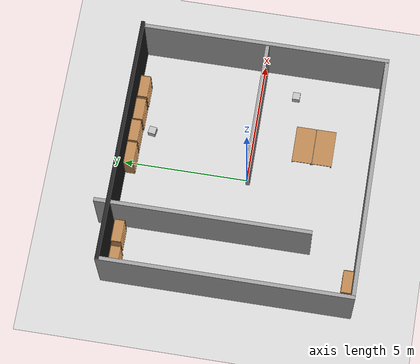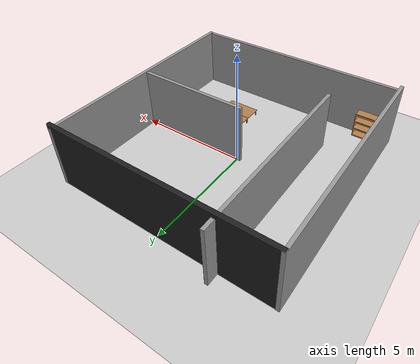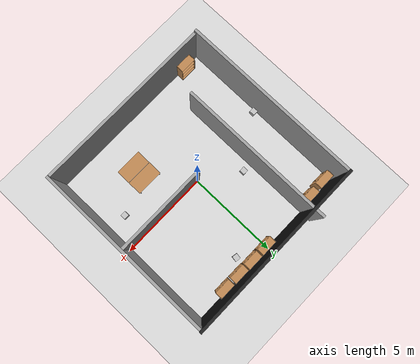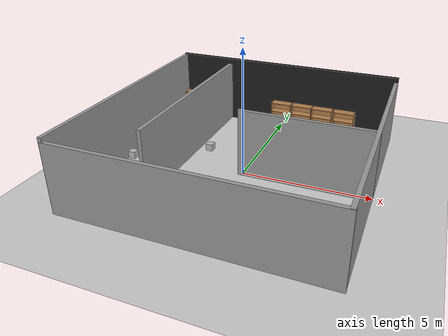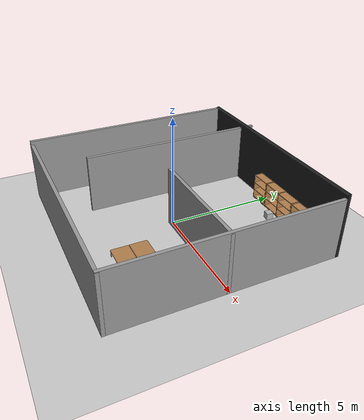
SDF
<sdf version="1.7">
 <world name="default">
  <light name="sun" type="directional">
   <pose>0 0 10 0 -0 0</pose>
   <diffuse>0.8 0.8 0.8 1</diffuse>
   <specular>0.2 0.2 0.2 1</specular>
   <attenuation>
    <range>1000</range>
    <constant>0.9</constant>
    <linear>0.01</linear>
    <quadratic>0.001</quadratic>
   </attenuation>
   <direction>-0.5 0.1 -0.9</direction>
   <spot><inner_angle>0</inner_angle><outer_angle>0</outer_angle><falloff>0</falloff></spot>
  </light>
  <model name="ground_plane">
   <static>1</static>
   <link name="link">
    <collision name="collision">
     <geometry><plane><normal>0 0 1</normal><size>100 100</size></plane></geometry>
     <surface><friction><ode><mu>100</mu><mu2>50</mu2></ode></friction></surface>
    </collision>
    <visual name="visual">
     <cast_shadows>0</cast_shadows>
     <geometry><plane><normal>0 0 1</normal><size>100 100</size></plane></geometry>
     <material>
      <script><uri>file://media/materials/scripts/gazebo.material</uri><name>Gazebo/Grey</name></script>
     </material>
    </visual>
   </link>
  </model>
  <gravity>0 0 -9.8</gravity>
  <magnetic_field>6e-06 2.3e-05 -4.2e-05</magnetic_field>
  <atmosphere type="adiabatic"/>
  <physics type="ode">
   <max_step_size>0.001</max_step_size>
   <real_time_factor>1</real_time_factor>
   <real_time_update_rate>1000</real_time_update_rate>
  </physics>
  <scene><ambient>0.4 0.4 0.4 1</ambient><background>0.7 0.7 0.7 1</background><shadows>1</shadows></scene>
  <spherical_coordinates>
   <surface_model>EARTH_WGS84</surface_model>
   <latitude_deg>0</latitude_deg>
   <longitude_deg>0</longitude_deg>
   <elevation>0</elevation>
   <heading_deg>0</heading_deg>
  </spherical_coordinates>
  <model name="bookshelf">
   <static>1</static>
   <link name="link">
    <inertial><mass>1</mass></inertial>
    <collision name="back">
     <pose>0 0.005 0.6 0 -0 0</pose>
     <geometry><box><size>0.9 0.01 1.2</size></box></geometry>
    </collision>
    <visual name="visual1">
     <pose>0 0.005 0.6 0 -0 0</pose>
     <geometry><box><size>0.9 0.01 1.2</size></box></geometry>
     <material>
      <script><uri>file://media/materials/scripts/gazebo.material</uri><name>Gazebo/Wood</name></script>
     </material>
    </visual>
    <collision name="left_side">
     <pose>0.45 -0.195 0.6 0 -0 0</pose>
     <geometry><box><size>0.02 0.4 1.2</size></box></geometry>
    </collision>
    <visual name="visual2">
     <pose>0.45 -0.195 0.6 0 -0 0</pose>
     <geometry><box><size>0.02 0.4 1.2</size></box></geometry>
     <material>
      <script><uri>file://media/materials/scripts/gazebo.material</uri><name>Gazebo/Wood</name></script>
     </material>
    </visual>
    <collision name="right_side">
     <pose>-0.45 -0.195 0.6 0 -0 0</pose>
     <geometry><box><size>0.02 0.4 1.2</size></box></geometry>
    </collision>
    <visual name="visual3">
     <pose>-0.45 -0.195 0.6 0 -0 0</pose>
     <geometry><box><size>0.02 0.4 1.2</size></box></geometry>
     <material>
      <script><uri>file://media/materials/scripts/gazebo.material</uri><name>Gazebo/Wood</name></script>
     </material>
    </visual>
    <collision name="bottom">
     <pose>0 -0.195 0.03 0 -0 0</pose>
     <geometry><box><size>0.88 0.4 0.06</size></box></geometry>
    </collision>
    <visual name="visual4">
     <pose>0 -0.195 0.03 0 -0 0</pose>
     <geometry><box><size>0.88 0.4 0.06</size></box></geometry>
     <material>
      <script><uri>file://media/materials/scripts/gazebo.material</uri><name>Gazebo/Wood</name></script>
     </material>
    </visual>
    <collision name="top">
     <pose>0 -0.195 1.19 0 -0 0</pose>
     <geometry><box><size>0.88 0.4 0.02</size></box></geometry>
    </collision>
    <visual name="visual5">
     <pose>0 -0.195 1.19 0 -0 0</pose>
     <geometry><box><size>0.88 0.4 0.02</size></box></geometry>
     <material>
      <script><uri>file://media/materials/scripts/gazebo.material</uri><name>Gazebo/Wood</name></script>
     </material>
    </visual>
    <collision name="low_shelf">
     <pose>0 -0.195 0.43 0 -0 0</pose>
     <geometry><box><size>0.88 0.4 0.02</size></box></geometry>
    </collision>
    <visual name="visual6">
     <pose>0 -0.195 0.43 0 -0 0</pose>
     <geometry><box><size>0.88 0.4 0.02</size></box></geometry>
     <material>
      <script><uri>file://media/materials/scripts/gazebo.material</uri><name>Gazebo/Wood</name></script>
     </material>
    </visual>
    <collision name="high_shelf">
     <pose>0 -0.195 0.8 0 -0 0</pose>
     <geometry><box><size>0.88 0.4 0.02</size></box></geometry>
    </collision>
    <visual name="visual7">
     <pose>0 -0.195 0.8 0 -0 0</pose>
     <geometry><box><size>0.88 0.4 0.02</size></box></geometry>
     <material>
      <script><uri>file://media/materials/scripts/gazebo.material</uri><name>Gazebo/Wood</name></script>
     </material>
    </visual>
   </link>
   <pose>0.052357 4.90916 0 0 -0 0</pose>
  </model>
  <model name="bookshelf_clone">
   <static>1</static>
   <link name="link">
    <inertial><mass>1</mass></inertial>
    <collision name="back">
     <pose>0 0.005 0.6 0 -0 0</pose>
     <geometry><box><size>0.9 0.01 1.2</size></box></geometry>
    </collision>
    <visual name="visual1">
     <pose>0 0.005 0.6 0 -0 0</pose>
     <geometry><box><size>0.9 0.01 1.2</size></box></geometry>
     <material>
      <script><uri>file://media/materials/scripts/gazebo.material</uri><name>Gazebo/Wood</name></script>
     </material>
    </visual>
    <collision name="left_side">
     <pose>0.45 -0.195 0.6 0 -0 0</pose>
     <geometry><box><size>0.02 0.4 1.2</size></box></geometry>
    </collision>
    <visual name="visual2">
     <pose>0.45 -0.195 0.6 0 -0 0</pose>
     <geometry><box><size>0.02 0.4 1.2</size></box></geometry>
     <material>
      <script><uri>file://media/materials/scripts/gazebo.material</uri><name>Gazebo/Wood</name></script>
     </material>
    </visual>
    <collision name="right_side">
     <pose>-0.45 -0.195 0.6 0 -0 0</pose>
     <geometry><box><size>0.02 0.4 1.2</size></box></geometry>
    </collision>
    <visual name="visual3">
     <pose>-0.45 -0.195 0.6 0 -0 0</pose>
     <geometry><box><size>0.02 0.4 1.2</size></box></geometry>
     <material>
      <script><uri>file://media/materials/scripts/gazebo.material</uri><name>Gazebo/Wood</name></script>
     </material>
    </visual>
    <collision name="bottom">
     <pose>0 -0.195 0.03 0 -0 0</pose>
     <geometry><box><size>0.88 0.4 0.06</size></box></geometry>
    </collision>
    <visual name="visual4">
     <pose>0 -0.195 0.03 0 -0 0</pose>
     <geometry><box><size>0.88 0.4 0.06</size></box></geometry>
     <material>
      <script><uri>file://media/materials/scripts/gazebo.material</uri><name>Gazebo/Wood</name></script>
     </material>
    </visual>
    <collision name="top">
     <pose>0 -0.195 1.19 0 -0 0</pose>
     <geometry><box><size>0.88 0.4 0.02</size></box></geometry>
    </collision>
    <visual name="visual5">
     <pose>0 -0.195 1.19 0 -0 0</pose>
     <geometry><box><size>0.88 0.4 0.02</size></box></geometry>
     <material>
      <script><uri>file://media/materials/scripts/gazebo.material</uri><name>Gazebo/Wood</name></script>
     </material>
    </visual>
    <collision name="low_shelf">
     <pose>0 -0.195 0.43 0 -0 0</pose>
     <geometry><box><size>0.88 0.4 0.02</size></box></geometry>
    </collision>
    <visual name="visual6">
     <pose>0 -0.195 0.43 0 -0 0</pose>
     <geometry><box><size>0.88 0.4 0.02</size></box></geometry>
     <material>
      <script><uri>file://media/materials/scripts/gazebo.material</uri><name>Gazebo/Wood</name></script>
     </material>
    </visual>
    <collision name="high_shelf">
     <pose>0 -0.195 0.8 0 -0 0</pose>
     <geometry><box><size>0.88 0.4 0.02</size></box></geometry>
    </collision>
    <visual name="visual7">
     <pose>0 -0.195 0.8 0 -0 0</pose>
     <geometry><box><size>0.88 0.4 0.02</size></box></geometry>
     <material>
      <script><uri>file://media/materials/scripts/gazebo.material</uri><name>Gazebo/Wood</name></script>
     </material>
    </visual>
   </link>
   <pose>1.01366 4.91194 0 0 -0 0</pose>
  </model>
  <model name="bookshelf_clone_0">
   <static>1</static>
   <link name="link">
    <inertial><mass>1</mass></inertial>
    <collision name="back">
     <pose>0 0.005 0.6 0 -0 0</pose>
     <geometry><box><size>0.9 0.01 1.2</size></box></geometry>
    </collision>
    <visual name="visual1">
     <pose>0 0.005 0.6 0 -0 0</pose>
     <geometry><box><size>0.9 0.01 1.2</size></box></geometry>
     <material>
      <script><uri>file://media/materials/scripts/gazebo.material</uri><name>Gazebo/Wood</name></script>
     </material>
    </visual>
    <collision name="left_side">
     <pose>0.45 -0.195 0.6 0 -0 0</pose>
     <geometry><box><size>0.02 0.4 1.2</size></box></geometry>
    </collision>
    <visual name="visual2">
     <pose>0.45 -0.195 0.6 0 -0 0</pose>
     <geometry><box><size>0.02 0.4 1.2</size></box></geometry>
     <material>
      <script><uri>file://media/materials/scripts/gazebo.material</uri><name>Gazebo/Wood</name></script>
     </material>
    </visual>
    <collision name="right_side">
     <pose>-0.45 -0.195 0.6 0 -0 0</pose>
     <geometry><box><size>0.02 0.4 1.2</size></box></geometry>
    </collision>
    <visual name="visual3">
     <pose>-0.45 -0.195 0.6 0 -0 0</pose>
     <geometry><box><size>0.02 0.4 1.2</size></box></geometry>
     <material>
      <script><uri>file://media/materials/scripts/gazebo.material</uri><name>Gazebo/Wood</name></script>
     </material>
    </visual>
    <collision name="bottom">
     <pose>0 -0.195 0.03 0 -0 0</pose>
     <geometry><box><size>0.88 0.4 0.06</size></box></geometry>
    </collision>
    <visual name="visual4">
     <pose>0 -0.195 0.03 0 -0 0</pose>
     <geometry><box><size>0.88 0.4 0.06</size></box></geometry>
     <material>
      <script><uri>file://media/materials/scripts/gazebo.material</uri><name>Gazebo/Wood</name></script>
     </material>
    </visual>
    <collision name="top">
     <pose>0 -0.195 1.19 0 -0 0</pose>
     <geometry><box><size>0.88 0.4 0.02</size></box></geometry>
    </collision>
    <visual name="visual5">
     <pose>0 -0.195 1.19 0 -0 0</pose>
     <geometry><box><size>0.88 0.4 0.02</size></box></geometry>
     <material>
      <script><uri>file://media/materials/scripts/gazebo.material</uri><name>Gazebo/Wood</name></script>
     </material>
    </visual>
    <collision name="low_shelf">
     <pose>0 -0.195 0.43 0 -0 0</pose>
     <geometry><box><size>0.88 0.4 0.02</size></box></geometry>
    </collision>
    <visual name="visual6">
     <pose>0 -0.195 0.43 0 -0 0</pose>
     <geometry><box><size>0.88 0.4 0.02</size></box></geometry>
     <material>
      <script><uri>file://media/materials/scripts/gazebo.material</uri><name>Gazebo/Wood</name></script>
     </material>
    </visual>
    <collision name="high_shelf">
     <pose>0 -0.195 0.8 0 -0 0</pose>
     <geometry><box><size>0.88 0.4 0.02</size></box></geometry>
    </collision>
    <visual name="visual7">
     <pose>0 -0.195 0.8 0 -0 0</pose>
     <geometry><box><size>0.88 0.4 0.02</size></box></geometry>
     <material>
      <script><uri>file://media/materials/scripts/gazebo.material</uri><name>Gazebo/Wood</name></script>
     </material>
    </visual>
   </link>
   <pose>1.95405 4.88392 0 0 -0 0</pose>
  </model>
  <model name="bookshelf_clone_1">
   <static>1</static>
   <link name="link">
    <inertial><mass>1</mass></inertial>
    <collision name="back">
     <pose>0 0.005 0.6 0 -0 0</pose>
     <geometry><box><size>0.9 0.01 1.2</size></box></geometry>
    </collision>
    <visual name="visual1">
     <pose>0 0.005 0.6 0 -0 0</pose>
     <geometry><box><size>0.9 0.01 1.2</size></box></geometry>
     <material>
      <script><uri>file://media/materials/scripts/gazebo.material</uri><name>Gazebo/Wood</name></script>
     </material>
    </visual>
    <collision name="left_side">
     <pose>0.45 -0.195 0.6 0 -0 0</pose>
     <geometry><box><size>0.02 0.4 1.2</size></box></geometry>
    </collision>
    <visual name="visual2">
     <pose>0.45 -0.195 0.6 0 -0 0</pose>
     <geometry><box><size>0.02 0.4 1.2</size></box></geometry>
     <material>
      <script><uri>file://media/materials/scripts/gazebo.material</uri><name>Gazebo/Wood</name></script>
     </material>
    </visual>
    <collision name="right_side">
     <pose>-0.45 -0.195 0.6 0 -0 0</pose>
     <geometry><box><size>0.02 0.4 1.2</size></box></geometry>
    </collision>
    <visual name="visual3">
     <pose>-0.45 -0.195 0.6 0 -0 0</pose>
     <geometry><box><size>0.02 0.4 1.2</size></box></geometry>
     <material>
      <script><uri>file://media/materials/scripts/gazebo.material</uri><name>Gazebo/Wood</name></script>
     </material>
    </visual>
    <collision name="bottom">
     <pose>0 -0.195 0.03 0 -0 0</pose>
     <geometry><box><size>0.88 0.4 0.06</size></box></geometry>
    </collision>
    <visual name="visual4">
     <pose>0 -0.195 0.03 0 -0 0</pose>
     <geometry><box><size>0.88 0.4 0.06</size></box></geometry>
     <material>
      <script><uri>file://media/materials/scripts/gazebo.material</uri><name>Gazebo/Wood</name></script>
     </material>
    </visual>
    <collision name="top">
     <pose>0 -0.195 1.19 0 -0 0</pose>
     <geometry><box><size>0.88 0.4 0.02</size></box></geometry>
    </collision>
    <visual name="visual5">
     <pose>0 -0.195 1.19 0 -0 0</pose>
     <geometry><box><size>0.88 0.4 0.02</size></box></geometry>
     <material>
      <script><uri>file://media/materials/scripts/gazebo.material</uri><name>Gazebo/Wood</name></script>
     </material>
    </visual>
    <collision name="low_shelf">
     <pose>0 -0.195 0.43 0 -0 0</pose>
     <geometry><box><size>0.88 0.4 0.02</size></box></geometry>
    </collision>
    <visual name="visual6">
     <pose>0 -0.195 0.43 0 -0 0</pose>
     <geometry><box><size>0.88 0.4 0.02</size></box></geometry>
     <material>
      <script><uri>file://media/materials/scripts/gazebo.material</uri><name>Gazebo/Wood</name></script>
     </material>
    </visual>
    <collision name="high_shelf">
     <pose>0 -0.195 0.8 0 -0 0</pose>
     <geometry><box><size>0.88 0.4 0.02</size></box></geometry>
    </collision>
    <visual name="visual7">
     <pose>0 -0.195 0.8 0 -0 0</pose>
     <geometry><box><size>0.88 0.4 0.02</size></box></geometry>
     <material>
      <script><uri>file://media/materials/scripts/gazebo.material</uri><name>Gazebo/Wood</name></script>
     </material>
    </visual>
   </link>
   <pose>2.93862 4.86876 0 0 -0 0</pose>
  </model>
  <model name="table">
   <static>1</static>
   <link name="link">
    <collision name="surface">
     <pose>0 0 1 0 -0 0</pose>
     <geometry><box><size>1.5 0.8 0.03</size></box></geometry>
     <surface><friction><ode><mu>0.6</mu><mu2>0.6</mu2></ode></friction></surface>
    </collision>
    <visual name="visual1">
     <pose>0 0 1 0 -0 0</pose>
     <geometry><box><size>1.5 0.8 0.03</size></box></geometry>
     <material>
      <script><uri>file://media/materials/scripts/gazebo.material</uri><name>Gazebo/Wood</name></script>
     </material>
    </visual>
    <collision name="front_left_leg">
     <pose>0.68 0.38 0.5 0 -0 0</pose>
     <geometry><cylinder><radius>0.02</radius><length>1</length></cylinder></geometry>
    </collision>
    <visual name="front_left_leg">
     <pose>0.68 0.38 0.5 0 -0 0</pose>
     <geometry><cylinder><radius>0.02</radius><length>1</length></cylinder></geometry>
     <material>
      <script><uri>file://media/materials/scripts/gazebo.material</uri><name>Gazebo/Grey</name></script>
     </material>
    </visual>
    <collision name="front_right_leg">
     <pose>0.68 -0.38 0.5 0 -0 0</pose>
     <geometry><cylinder><radius>0.02</radius><length>1</length></cylinder></geometry>
    </collision>
    <visual name="front_right_leg">
     <pose>0.68 -0.38 0.5 0 -0 0</pose>
     <geometry><cylinder><radius>0.02</radius><length>1</length></cylinder></geometry>
     <material>
      <script><uri>file://media/materials/scripts/gazebo.material</uri><name>Gazebo/Grey</name></script>
     </material>
    </visual>
    <collision name="back_right_leg">
     <pose>-0.68 -0.38 0.5 0 -0 0</pose>
     <geometry><cylinder><radius>0.02</radius><length>1</length></cylinder></geometry>
    </collision>
    <visual name="back_right_leg">
     <pose>-0.68 -0.38 0.5 0 -0 0</pose>
     <geometry><cylinder><radius>0.02</radius><length>1</length></cylinder></geometry>
     <material>
      <script><uri>file://media/materials/scripts/gazebo.material</uri><name>Gazebo/Grey</name></script>
     </material>
    </visual>
    <collision name="back_left_leg">
     <pose>-0.68 0.38 0.5 0 -0 0</pose>
     <geometry><cylinder><radius>0.02</radius><length>1</length></cylinder></geometry>
    </collision>
    <visual name="back_left_leg">
     <pose>-0.68 0.38 0.5 0 -0 0</pose>
     <geometry><cylinder><radius>0.02</radius><length>1</length></cylinder></geometry>
     <material>
      <script><uri>file://media/materials/scripts/gazebo.material</uri><name>Gazebo/Grey</name></script>
     </material>
    </visual>
   </link>
   <pose>1.78926 -2.06828 -0.728701 0 -0 0</pose>
  </model>
  <model name="table_clone">
   <static>1</static>
   <link name="link">
    <collision name="surface">
     <pose>0 0 1 0 -0 0</pose>
     <geometry><box><size>1.5 0.8 0.03</size></box></geometry>
     <surface><friction><ode><mu>0.6</mu><mu2>0.6</mu2></ode></friction></surface>
    </collision>
    <visual name="visual1">
     <pose>0 0 1 0 -0 0</pose>
     <geometry><box><size>1.5 0.8 0.03</size></box></geometry>
     <material>
      <script><uri>file://media/materials/scripts/gazebo.material</uri><name>Gazebo/Wood</name></script>
     </material>
    </visual>
    <collision name="front_left_leg">
     <pose>0.68 0.38 0.5 0 -0 0</pose>
     <geometry><cylinder><radius>0.02</radius><length>1</length></cylinder></geometry>
    </collision>
    <visual name="front_left_leg">
     <pose>0.68 0.38 0.5 0 -0 0</pose>
     <geometry><cylinder><radius>0.02</radius><length>1</length></cylinder></geometry>
     <material>
      <script><uri>file://media/materials/scripts/gazebo.material</uri><name>Gazebo/Grey</name></script>
     </material>
    </visual>
    <collision name="front_right_leg">
     <pose>0.68 -0.38 0.5 0 -0 0</pose>
     <geometry><cylinder><radius>0.02</radius><length>1</length></cylinder></geometry>
    </collision>
    <visual name="front_right_leg">
     <pose>0.68 -0.38 0.5 0 -0 0</pose>
     <geometry><cylinder><radius>0.02</radius><length>1</length></cylinder></geometry>
     <material>
      <script><uri>file://media/materials/scripts/gazebo.material</uri><name>Gazebo/Grey</name></script>
     </material>
    </visual>
    <collision name="back_right_leg">
     <pose>-0.68 -0.38 0.5 0 -0 0</pose>
     <geometry><cylinder><radius>0.02</radius><length>1</length></cylinder></geometry>
    </collision>
    <visual name="back_right_leg">
     <pose>-0.68 -0.38 0.5 0 -0 0</pose>
     <geometry><cylinder><radius>0.02</radius><length>1</length></cylinder></geometry>
     <material>
      <script><uri>file://media/materials/scripts/gazebo.material</uri><name>Gazebo/Grey</name></script>
     </material>
    </visual>
    <collision name="back_left_leg">
     <pose>-0.68 0.38 0.5 0 -0 0</pose>
     <geometry><cylinder><radius>0.02</radius><length>1</length></cylinder></geometry>
    </collision>
    <visual name="back_left_leg">
     <pose>-0.68 0.38 0.5 0 -0 0</pose>
     <geometry><cylinder><radius>0.02</radius><length>1</length></cylinder></geometry>
     <material>
      <script><uri>file://media/materials/scripts/gazebo.material</uri><name>Gazebo/Grey</name></script>
     </material>
    </visual>
   </link>
   <pose>1.78996 -2.88687 -0.728701 0 -0 0</pose>
  </model>
  <model name="EmptyRoom">
   <link name="Wall_1">
    <pose>-4.94152 0.009527 1.17898 0 0 -1.5708</pose>
    <inertial>
     <inertia><ixx>0</ixx><ixy>0</ixy><ixz>0</ixz><iyy>0</iyy><iyz>0</iyz><izz>0</izz></inertia>
     <mass>0</mass>
    </inertial>
    <visual name="Wall_1_Visual">
     <pose>0 0 0.5 0 -0 0</pose>
     <geometry><box><size>10 0.15 3.03912</size></box></geometry>
     <material>
      <script><uri>file://media/materials/scripts/gazebo.material</uri><name>Gazebo/Grey</name></script>
      <ambient>1 1 1 1</ambient>
      <shader type="pixel"/>
     </material>
     <meta><layer>0</layer></meta>
    </visual>
    <collision name="Wall_1_Collision">
     <pose>0 0 0.5 0 -0 0</pose>
     <geometry><box><size>10 0.15 3.03912</size></box></geometry>
     <surface>
      <friction>
       <ode><mu>1</mu><mu2>1</mu2><fdir1>0 0 0</fdir1><slip1>0</slip1><slip2>0</slip2></ode>
       <torsional>
        <coefficient>1</coefficient>
        <patch_radius>0</patch_radius>
        <surface_radius>0</surface_radius>
        <use_patch_radius>1</use_patch_radius>
        <ode><slip>0</slip></ode>
       </torsional>
      </friction>
      <bounce><restitution_coefficient>0</restitution_coefficient><threshold>1e+06</threshold></bounce>
      <contact>
       <collide_without_contact>0</collide_without_contact>
       <collide_without_contact_bitmask>1</collide_without_contact_bitmask>
       <collide_bitmask>1</collide_bitmask>
       <ode>
        <soft_cfm>0</soft_cfm>
        <soft_erp>0.2</soft_erp>
        <kp>1e+13</kp>
        <kd>1</kd>
        <max_vel>0.01</max_vel>
        <min_depth>0</min_depth>
       </ode>
       <bullet>
        <split_impulse>1</split_impulse>
        <split_impulse_penetration_threshold>-0.01</split_impulse_penetration_threshold>
        <soft_cfm>0</soft_cfm>
        <soft_erp>0.2</soft_erp>
        <kp>1e+13</kp>
        <kd>1</kd>
       </bullet>
      </contact>
     </surface>
    </collision>
   </link>
   <link name="Wall_1_clone">
    <pose>-2.59292 1.24894 0.989073 0 0 -1.5708</pose>
    <inertial>
     <inertia><ixx>0</ixx><ixy>0</ixy><ixz>0</ixz><iyy>0</iyy><iyz>0</iyz><izz>0</izz></inertia>
     <mass>0</mass>
    </inertial>
    <visual name="Wall_1_Visual">
     <pose>0 0 0.5 0 -0 0</pose>
     <geometry><box><size>8.53616 0.15 3.03912</size></box></geometry>
     <material>
      <script><uri>file://media/materials/scripts/gazebo.material</uri><name>Gazebo/Grey</name></script>
      <ambient>1 1 1 1</ambient>
      <shader type="pixel"/>
     </material>
     <meta><layer>0</layer></meta>
    </visual>
    <collision name="Wall_1_Collision">
     <pose>0 0 0.5 0 -0 0</pose>
     <geometry><box><size>8.53616 0.15 3.03912</size></box></geometry>
     <surface>
      <friction>
       <ode><mu>1</mu><mu2>1</mu2><fdir1>0 0 0</fdir1><slip1>0</slip1><slip2>0</slip2></ode>
       <torsional>
        <coefficient>1</coefficient>
        <patch_radius>0</patch_radius>
        <surface_radius>0</surface_radius>
        <use_patch_radius>1</use_patch_radius>
        <ode><slip>0</slip></ode>
       </torsional>
      </friction>
      <bounce><restitution_coefficient>0</restitution_coefficient><threshold>1e+06</threshold></bounce>
      <contact>
       <collide_without_contact>0</collide_without_contact>
       <collide_without_contact_bitmask>1</collide_without_contact_bitmask>
       <collide_bitmask>1</collide_bitmask>
       <ode>
        <soft_cfm>0</soft_cfm>
        <soft_erp>0.2</soft_erp>
        <kp>1e+13</kp>
        <kd>1</kd>
        <max_vel>0.01</max_vel>
        <min_depth>0</min_depth>
       </ode>
       <bullet>
        <split_impulse>1</split_impulse>
        <split_impulse_penetration_threshold>-0.01</split_impulse_penetration_threshold>
        <soft_cfm>0</soft_cfm>
        <soft_erp>0.2</soft_erp>
        <kp>1e+13</kp>
        <kd>1</kd>
       </bullet>
      </contact>
     </surface>
    </collision>
   </link>
   <link name="Wall_1_clone_clone">
    <pose>2.41978 -0.128976 0.989073 0 -0 3.14159</pose>
    <inertial>
     <inertia><ixx>0</ixx><ixy>0</ixy><ixz>0</ixz><iyy>0</iyy><iyz>0</iyz><izz>0</izz></inertia>
     <mass>0</mass>
    </inertial>
    <visual name="Wall_1_Visual">
     <pose>0 0 0.5 0 -0 0</pose>
     <geometry><box><size>5.15413 0.15 3.03912</size></box></geometry>
     <material>
      <script><uri>file://media/materials/scripts/gazebo.material</uri><name>Gazebo/Grey</name></script>
      <ambient>1 1 1 1</ambient>
      <shader type="pixel"/>
     </material>
     <meta><layer>0</layer></meta>
    </visual>
    <collision name="Wall_1_Collision">
     <pose>0 0 0.5 0 -0 0</pose>
     <geometry><box><size>5.15413 0.15 3.03912</size></box></geometry>
     <surface>
      <friction>
       <ode><mu>1</mu><mu2>1</mu2><fdir1>0 0 0</fdir1><slip1>0</slip1><slip2>0</slip2></ode>
       <torsional>
        <coefficient>1</coefficient>
        <patch_radius>0</patch_radius>
        <surface_radius>0</surface_radius>
        <use_patch_radius>1</use_patch_radius>
        <ode><slip>0</slip></ode>
       </torsional>
      </friction>
      <bounce><restitution_coefficient>0</restitution_coefficient><threshold>1e+06</threshold></bounce>
      <contact>
       <collide_without_contact>0</collide_without_contact>
       <collide_without_contact_bitmask>1</collide_without_contact_bitmask>
       <collide_bitmask>1</collide_bitmask>
       <ode>
        <soft_cfm>0</soft_cfm>
        <soft_erp>0.2</soft_erp>
        <kp>1e+13</kp>
        <kd>1</kd>
        <max_vel>0.01</max_vel>
        <min_depth>0</min_depth>
       </ode>
       <bullet>
        <split_impulse>1</split_impulse>
        <split_impulse_penetration_threshold>-0.01</split_impulse_penetration_threshold>
        <soft_cfm>0</soft_cfm>
        <soft_erp>0.2</soft_erp>
        <kp>1e+13</kp>
        <kd>1</kd>
       </bullet>
      </contact>
     </surface>
    </collision>
   </link>
   <link name="Wall_2">
    <pose>0 -4.925 1.06805 0 -0 0</pose>
    <inertial>
     <inertia><ixx>0</ixx><ixy>0</ixy><ixz>0</ixz><iyy>0</iyy><iyz>0</iyz><izz>0</izz></inertia>
     <mass>0</mass>
    </inertial>
    <visual name="Wall_2_Visual">
     <pose>0 0 0.5 0 -0 0</pose>
     <geometry><box><size>10 0.15 2.91967</size></box></geometry>
     <material>
      <script><uri>file://media/materials/scripts/gazebo.material</uri><name>Gazebo/Grey</name></script>
      <ambient>1 1 1 1</ambient>
      <shader type="pixel"/>
     </material>
     <meta><layer>0</layer></meta>
    </visual>
    <collision name="Wall_2_Collision">
     <pose>0 0 0.5 0 -0 0</pose>
     <geometry><box><size>10 0.15 2.91967</size></box></geometry>
     <surface>
      <friction>
       <ode><mu>1</mu><mu2>1</mu2><fdir1>0 0 0</fdir1><slip1>0</slip1><slip2>0</slip2></ode>
       <torsional>
        <coefficient>1</coefficient>
        <patch_radius>0</patch_radius>
        <surface_radius>0</surface_radius>
        <use_patch_radius>1</use_patch_radius>
        <ode><slip>0</slip></ode>
       </torsional>
      </friction>
      <bounce><restitution_coefficient>0</restitution_coefficient><threshold>1e+06</threshold></bounce>
      <contact>
       <collide_without_contact>0</collide_without_contact>
       <collide_without_contact_bitmask>1</collide_without_contact_bitmask>
       <collide_bitmask>1</collide_bitmask>
       <ode>
        <soft_cfm>0</soft_cfm>
        <soft_erp>0.2</soft_erp>
        <kp>1e+13</kp>
        <kd>1</kd>
        <max_vel>0.01</max_vel>
        <min_depth>0</min_depth>
       </ode>
       <bullet>
        <split_impulse>1</split_impulse>
        <split_impulse_penetration_threshold>-0.01</split_impulse_penetration_threshold>
        <soft_cfm>0</soft_cfm>
        <soft_erp>0.2</soft_erp>
        <kp>1e+13</kp>
        <kd>1</kd>
       </bullet>
      </contact>
     </surface>
    </collision>
   </link>
   <link name="Wall_3">
    <pose>4.91924 0.00309 1.14348 0 -0 1.5708</pose>
    <inertial>
     <inertia><ixx>0</ixx><ixy>0</ixy><ixz>0</ixz><iyy>0</iyy><iyz>0</iyz><izz>0</izz></inertia>
     <mass>0</mass>
    </inertial>
    <visual name="Wall_3_Visual">
     <pose>0 0 0.5 0 -0 0</pose>
     <geometry><box><size>10 0.15 2.81192</size></box></geometry>
     <material>
      <script><uri>file://media/materials/scripts/gazebo.material</uri><name>Gazebo/Grey</name></script>
      <ambient>1 1 1 1</ambient>
      <shader type="pixel"/>
     </material>
     <meta><layer>0</layer></meta>
    </visual>
    <collision name="Wall_3_Collision">
     <pose>0 0 0.5 0 -0 0</pose>
     <geometry><box><size>10 0.15 2.81192</size></box></geometry>
     <surface>
      <friction>
       <ode><mu>1</mu><mu2>1</mu2><fdir1>0 0 0</fdir1><slip1>0</slip1><slip2>0</slip2></ode>
       <torsional>
        <coefficient>1</coefficient>
        <patch_radius>0</patch_radius>
        <surface_radius>0</surface_radius>
        <use_patch_radius>1</use_patch_radius>
        <ode><slip>0</slip></ode>
       </torsional>
      </friction>
      <bounce><restitution_coefficient>0</restitution_coefficient><threshold>1e+06</threshold></bounce>
      <contact>
       <collide_without_contact>0</collide_without_contact>
       <collide_without_contact_bitmask>1</collide_without_contact_bitmask>
       <collide_bitmask>1</collide_bitmask>
       <ode>
        <soft_cfm>0</soft_cfm>
        <soft_erp>0.2</soft_erp>
        <kp>1e+13</kp>
        <kd>1</kd>
        <max_vel>0.01</max_vel>
        <min_depth>0</min_depth>
       </ode>
       <bullet>
        <split_impulse>1</split_impulse>
        <split_impulse_penetration_threshold>-0.01</split_impulse_penetration_threshold>
        <soft_cfm>0</soft_cfm>
        <soft_erp>0.2</soft_erp>
        <kp>1e+13</kp>
        <kd>1</kd>
       </bullet>
      </contact>
     </surface>
    </collision>
   </link>
   <link name="Wall_4">
    <pose>0 4.925 1.22875 0 -0 3.14159</pose>
    <inertial>
     <inertia><ixx>0</ixx><ixy>0</ixy><ixz>0</ixz><iyy>0</iyy><iyz>0</iyz><izz>0</izz></inertia>
     <mass>0</mass>
    </inertial>
    <visual name="Wall_4_Visual">
     <pose>0 0 0.5 0 -0 0</pose>
     <geometry><box><size>10 0.15 3.02138</size></box></geometry>
     <material>
      <script><uri>file://media/materials/scripts/gazebo.material</uri><name>Gazebo/Black</name></script>
      <ambient>1 1 1 1</ambient>
      <shader type="pixel"><normal_map>__default__</normal_map></shader>
      <diffuse>0.7 0.7 0.7 1</diffuse>
      <specular>0.01 0.01 0.01 1</specular>
      <emissive>0 0 0 1</emissive>
     </material>
     <meta><layer>0</layer></meta>
    </visual>
    <collision name="Wall_4_Collision">
     <pose>0 0 0.5 0 -0 0</pose>
     <geometry><box><size>10 0.15 3.02138</size></box></geometry>
     <surface>
      <friction>
       <ode><mu>1</mu><mu2>1</mu2><fdir1>0 0 0</fdir1><slip1>0</slip1><slip2>0</slip2></ode>
       <torsional>
        <coefficient>1</coefficient>
        <patch_radius>0</patch_radius>
        <surface_radius>0</surface_radius>
        <use_patch_radius>1</use_patch_radius>
        <ode><slip>0</slip></ode>
       </torsional>
      </friction>
      <bounce><restitution_coefficient>0</restitution_coefficient><threshold>1e+06</threshold></bounce>
      <contact>
       <collide_without_contact>0</collide_without_contact>
       <collide_without_contact_bitmask>1</collide_without_contact_bitmask>
       <collide_bitmask>1</collide_bitmask>
       <ode>
        <soft_cfm>0</soft_cfm>
        <soft_erp>0.2</soft_erp>
        <kp>1e+13</kp>
        <kd>1</kd>
        <max_vel>0.01</max_vel>
        <min_depth>0</min_depth>
       </ode>
       <bullet>
        <split_impulse>1</split_impulse>
        <split_impulse_penetration_threshold>-0.01</split_impulse_penetration_threshold>
        <soft_cfm>0</soft_cfm>
        <soft_erp>0.2</soft_erp>
        <kp>1e+13</kp>
        <kd>1</kd>
       </bullet>
      </contact>
     </surface>
    </collision>
   </link>
   <static>1</static>
   <pose>0 0.065445 -0.3 0 -0 0</pose>
  </model>
  <model name="bookshelf_0">
   <static>1</static>
   <link name="link">
    <inertial><mass>1</mass></inertial>
    <collision name="back">
     <pose>0 0.005 0.6 0 -0 0</pose>
     <geometry><box><size>0.9 0.01 1.2</size></box></geometry>
    </collision>
    <visual name="visual1">
     <pose>0 0.005 0.6 0 -0 0</pose>
     <geometry><box><size>0.9 0.01 1.2</size></box></geometry>
     <material>
      <script><uri>file://media/materials/scripts/gazebo.material</uri><name>Gazebo/Wood</name></script>
     </material>
    </visual>
    <collision name="left_side">
     <pose>0.45 -0.195 0.6 0 -0 0</pose>
     <geometry><box><size>0.02 0.4 1.2</size></box></geometry>
    </collision>
    <visual name="visual2">
     <pose>0.45 -0.195 0.6 0 -0 0</pose>
     <geometry><box><size>0.02 0.4 1.2</size></box></geometry>
     <material>
      <script><uri>file://media/materials/scripts/gazebo.material</uri><name>Gazebo/Wood</name></script>
     </material>
    </visual>
    <collision name="right_side">
     <pose>-0.45 -0.195 0.6 0 -0 0</pose>
     <geometry><box><size>0.02 0.4 1.2</size></box></geometry>
    </collision>
    <visual name="visual3">
     <pose>-0.45 -0.195 0.6 0 -0 0</pose>
     <geometry><box><size>0.02 0.4 1.2</size></box></geometry>
     <material>
      <script><uri>file://media/materials/scripts/gazebo.material</uri><name>Gazebo/Wood</name></script>
     </material>
    </visual>
    <collision name="bottom">
     <pose>0 -0.195 0.03 0 -0 0</pose>
     <geometry><box><size>0.88 0.4 0.06</size></box></geometry>
    </collision>
    <visual name="visual4">
     <pose>0 -0.195 0.03 0 -0 0</pose>
     <geometry><box><size>0.88 0.4 0.06</size></box></geometry>
     <material>
      <script><uri>file://media/materials/scripts/gazebo.material</uri><name>Gazebo/Wood</name></script>
     </material>
    </visual>
    <collision name="top">
     <pose>0 -0.195 1.19 0 -0 0</pose>
     <geometry><box><size>0.88 0.4 0.02</size></box></geometry>
    </collision>
    <visual name="visual5">
     <pose>0 -0.195 1.19 0 -0 0</pose>
     <geometry><box><size>0.88 0.4 0.02</size></box></geometry>
     <material>
      <script><uri>file://media/materials/scripts/gazebo.material</uri><name>Gazebo/Wood</name></script>
     </material>
    </visual>
    <collision name="low_shelf">
     <pose>0 -0.195 0.43 0 -0 0</pose>
     <geometry><box><size>0.88 0.4 0.02</size></box></geometry>
    </collision>
    <visual name="visual6">
     <pose>0 -0.195 0.43 0 -0 0</pose>
     <geometry><box><size>0.88 0.4 0.02</size></box></geometry>
     <material>
      <script><uri>file://media/materials/scripts/gazebo.material</uri><name>Gazebo/Wood</name></script>
     </material>
    </visual>
    <collision name="high_shelf">
     <pose>0 -0.195 0.8 0 -0 0</pose>
     <geometry><box><size>0.88 0.4 0.02</size></box></geometry>
    </collision>
    <visual name="visual7">
     <pose>0 -0.195 0.8 0 -0 0</pose>
     <geometry><box><size>0.88 0.4 0.02</size></box></geometry>
     <material>
      <script><uri>file://media/materials/scripts/gazebo.material</uri><name>Gazebo/Wood</name></script>
     </material>
    </visual>
   </link>
   <pose>-4.3321 4.7631 0 0 -0 0</pose>
  </model>
  <model name="bookshelf_1">
   <static>1</static>
   <link name="link">
    <inertial><mass>1</mass></inertial>
    <collision name="back">
     <pose>0 0.005 0.6 0 -0 0</pose>
     <geometry><box><size>0.9 0.01 1.2</size></box></geometry>
    </collision>
    <visual name="visual1">
     <pose>0 0.005 0.6 0 -0 0</pose>
     <geometry><box><size>0.9 0.01 1.2</size></box></geometry>
     <material>
      <script><uri>file://media/materials/scripts/gazebo.material</uri><name>Gazebo/Wood</name></script>
     </material>
    </visual>
    <collision name="left_side">
     <pose>0.45 -0.195 0.6 0 -0 0</pose>
     <geometry><box><size>0.02 0.4 1.2</size></box></geometry>
    </collision>
    <visual name="visual2">
     <pose>0.45 -0.195 0.6 0 -0 0</pose>
     <geometry><box><size>0.02 0.4 1.2</size></box></geometry>
     <material>
      <script><uri>file://media/materials/scripts/gazebo.material</uri><name>Gazebo/Wood</name></script>
     </material>
    </visual>
    <collision name="right_side">
     <pose>-0.45 -0.195 0.6 0 -0 0</pose>
     <geometry><box><size>0.02 0.4 1.2</size></box></geometry>
    </collision>
    <visual name="visual3">
     <pose>-0.45 -0.195 0.6 0 -0 0</pose>
     <geometry><box><size>0.02 0.4 1.2</size></box></geometry>
     <material>
      <script><uri>file://media/materials/scripts/gazebo.material</uri><name>Gazebo/Wood</name></script>
     </material>
    </visual>
    <collision name="bottom">
     <pose>0 -0.195 0.03 0 -0 0</pose>
     <geometry><box><size>0.88 0.4 0.06</size></box></geometry>
    </collision>
    <visual name="visual4">
     <pose>0 -0.195 0.03 0 -0 0</pose>
     <geometry><box><size>0.88 0.4 0.06</size></box></geometry>
     <material>
      <script><uri>file://media/materials/scripts/gazebo.material</uri><name>Gazebo/Wood</name></script>
     </material>
    </visual>
    <collision name="top">
     <pose>0 -0.195 1.19 0 -0 0</pose>
     <geometry><box><size>0.88 0.4 0.02</size></box></geometry>
    </collision>
    <visual name="visual5">
     <pose>0 -0.195 1.19 0 -0 0</pose>
     <geometry><box><size>0.88 0.4 0.02</size></box></geometry>
     <material>
      <script><uri>file://media/materials/scripts/gazebo.material</uri><name>Gazebo/Wood</name></script>
     </material>
    </visual>
    <collision name="low_shelf">
     <pose>0 -0.195 0.43 0 -0 0</pose>
     <geometry><box><size>0.88 0.4 0.02</size></box></geometry>
    </collision>
    <visual name="visual6">
     <pose>0 -0.195 0.43 0 -0 0</pose>
     <geometry><box><size>0.88 0.4 0.02</size></box></geometry>
     <material>
      <script><uri>file://media/materials/scripts/gazebo.material</uri><name>Gazebo/Wood</name></script>
     </material>
    </visual>
    <collision name="high_shelf">
     <pose>0 -0.195 0.8 0 -0 0</pose>
     <geometry><box><size>0.88 0.4 0.02</size></box></geometry>
    </collision>
    <visual name="visual7">
     <pose>0 -0.195 0.8 0 -0 0</pose>
     <geometry><box><size>0.88 0.4 0.02</size></box></geometry>
     <material>
      <script><uri>file://media/materials/scripts/gazebo.material</uri><name>Gazebo/Wood</name></script>
     </material>
    </visual>
   </link>
   <pose>-3.24932 4.80489 0 0 -0 0</pose>
  </model>
  <model name="bookshelf_2">
   <static>1</static>
   <link name="link">
    <inertial><mass>1</mass></inertial>
    <collision name="back">
     <pose>0 0.005 0.6 0 -0 0</pose>
     <geometry><box><size>0.9 0.01 1.2</size></box></geometry>
    </collision>
    <visual name="visual1">
     <pose>0 0.005 0.6 0 -0 0</pose>
     <geometry><box><size>0.9 0.01 1.2</size></box></geometry>
     <material>
      <script><uri>file://media/materials/scripts/gazebo.material</uri><name>Gazebo/Wood</name></script>
     </material>
    </visual>
    <collision name="left_side">
     <pose>0.45 -0.195 0.6 0 -0 0</pose>
     <geometry><box><size>0.02 0.4 1.2</size></box></geometry>
    </collision>
    <visual name="visual2">
     <pose>0.45 -0.195 0.6 0 -0 0</pose>
     <geometry><box><size>0.02 0.4 1.2</size></box></geometry>
     <material>
      <script><uri>file://media/materials/scripts/gazebo.material</uri><name>Gazebo/Wood</name></script>
     </material>
    </visual>
    <collision name="right_side">
     <pose>-0.45 -0.195 0.6 0 -0 0</pose>
     <geometry><box><size>0.02 0.4 1.2</size></box></geometry>
    </collision>
    <visual name="visual3">
     <pose>-0.45 -0.195 0.6 0 -0 0</pose>
     <geometry><box><size>0.02 0.4 1.2</size></box></geometry>
     <material>
      <script><uri>file://media/materials/scripts/gazebo.material</uri><name>Gazebo/Wood</name></script>
     </material>
    </visual>
    <collision name="bottom">
     <pose>0 -0.195 0.03 0 -0 0</pose>
     <geometry><box><size>0.88 0.4 0.06</size></box></geometry>
    </collision>
    <visual name="visual4">
     <pose>0 -0.195 0.03 0 -0 0</pose>
     <geometry><box><size>0.88 0.4 0.06</size></box></geometry>
     <material>
      <script><uri>file://media/materials/scripts/gazebo.material</uri><name>Gazebo/Wood</name></script>
     </material>
    </visual>
    <collision name="top">
     <pose>0 -0.195 1.19 0 -0 0</pose>
     <geometry><box><size>0.88 0.4 0.02</size></box></geometry>
    </collision>
    <visual name="visual5">
     <pose>0 -0.195 1.19 0 -0 0</pose>
     <geometry><box><size>0.88 0.4 0.02</size></box></geometry>
     <material>
      <script><uri>file://media/materials/scripts/gazebo.material</uri><name>Gazebo/Wood</name></script>
     </material>
    </visual>
    <collision name="low_shelf">
     <pose>0 -0.195 0.43 0 -0 0</pose>
     <geometry><box><size>0.88 0.4 0.02</size></box></geometry>
    </collision>
    <visual name="visual6">
     <pose>0 -0.195 0.43 0 -0 0</pose>
     <geometry><box><size>0.88 0.4 0.02</size></box></geometry>
     <material>
      <script><uri>file://media/materials/scripts/gazebo.material</uri><name>Gazebo/Wood</name></script>
     </material>
    </visual>
    <collision name="high_shelf">
     <pose>0 -0.195 0.8 0 -0 0</pose>
     <geometry><box><size>0.88 0.4 0.02</size></box></geometry>
    </collision>
    <visual name="visual7">
     <pose>0 -0.195 0.8 0 -0 0</pose>
     <geometry><box><size>0.88 0.4 0.02</size></box></geometry>
     <material>
      <script><uri>file://media/materials/scripts/gazebo.material</uri><name>Gazebo/Wood</name></script>
     </material>
    </visual>
   </link>
   <pose>-3.88863 -4.77551 0 0 0 -3.14159</pose>
  </model>
  <model name="DynamicObstacle">
   <pose>-2.04068 1.3555 0.149997 0 0 -1.57228</pose>
   <link name="link">
    <inertial>
     <inertia><ixx>0.17</ixx><ixy>0</ixy><ixz>0</ixz><iyy>0.17</iyy><iyz>0</iyz><izz>0.17</izz></inertia>
     <mass>100</mass>
    </inertial>
    <collision name="collision">
     <max_contacts>0</max_contacts>
     <geometry><box><size>0.3 0.3 0.3</size></box></geometry>
     <surface>
      <friction><ode><mu>0</mu><mu2>0</mu2></ode></friction>
      <bounce><restitution_coefficient>0</restitution_coefficient><threshold>0</threshold></bounce>
      <contact><ode><kp>2e+09</kp><kd>1</kd><max_vel>0.01</max_vel><min_depth>0</min_depth></ode></contact>
     </surface>
    </collision>
    <visual name="visual"><geometry><box><size>0.3 0.3 0.3</size></box></geometry></visual>
   </link>
   <plugin name="random" filename="libRandomVelocityPlugin.so">
    <link>link</link>
    <initial_velocity>0 0.05 0</initial_velocity>
    <velocity_factor>0.2</velocity_factor>
    <update_period>5</update_period>
    <min_z>-5</min_z>
    <max_z>0</max_z>
   </plugin>
  </model>
  <model name="DynamicObstacle_0">
   <pose>1.45513 4.11752 0.15 0 -0 1.41726</pose>
   <link name="link">
    <inertial>
     <inertia><ixx>0.17</ixx><ixy>0</ixy><ixz>0</ixz><iyy>0.17</iyy><iyz>0</iyz><izz>0.17</izz></inertia>
     <mass>100</mass>
    </inertial>
    <collision name="collision">
     <max_contacts>0</max_contacts>
     <geometry><box><size>0.3 0.3 0.3</size></box></geometry>
     <surface>
      <friction><ode><mu>0</mu><mu2>0</mu2></ode></friction>
      <bounce><restitution_coefficient>0</restitution_coefficient><threshold>0</threshold></bounce>
      <contact><ode><kp>2e+09</kp><kd>1</kd><max_vel>0.01</max_vel><min_depth>0</min_depth></ode></contact>
     </surface>
    </collision>
    <visual name="visual"><geometry><box><size>0.3 0.3 0.3</size></box></geometry></visual>
   </link>
   <plugin name="random" filename="libRandomVelocityPlugin.so">
    <link>link</link>
    <initial_velocity>0 0.05 0</initial_velocity>
    <velocity_factor>0.2</velocity_factor>
    <update_period>5</update_period>
    <min_z>-5</min_z>
    <max_z>0</max_z>
   </plugin>
  </model>
  <model name="DynamicObstacle_1">
   <pose>-4.71652 -0.438363 0.15 0 0 -4e-06</pose>
   <link name="link">
    <inertial>
     <inertia><ixx>0.17</ixx><ixy>0</ixy><ixz>0</ixz><iyy>0.17</iyy><iyz>0</iyz><izz>0.17</izz></inertia>
     <mass>100</mass>
    </inertial>
    <collision name="collision">
     <max_contacts>0</max_contacts>
     <geometry><box><size>0.3 0.3 0.3</size></box></geometry>
     <surface>
      <friction><ode><mu>0</mu><mu2>0</mu2></ode></friction>
      <bounce><restitution_coefficient>0</restitution_coefficient><threshold>0</threshold></bounce>
      <contact><ode><kp>2e+09</kp><kd>1</kd><max_vel>0.01</max_vel><min_depth>0</min_depth></ode></contact>
     </surface>
    </collision>
    <visual name="visual"><geometry><box><size>0.3 0.3 0.3</size></box></geometry></visual>
   </link>
   <plugin name="random" filename="libRandomVelocityPlugin.so">
    <link>link</link>
    <initial_velocity>0 0.05 0</initial_velocity>
    <velocity_factor>0.2</velocity_factor>
    <update_period>5</update_period>
    <min_z>-5</min_z>
    <max_z>0</max_z>
   </plugin>
  </model>
  <model name="DynamicObstacle_2">
   <pose>3.86021 -1.44056 0.149991 0 6.1e-05 8e-06</pose>
   <link name="link">
    <inertial>
     <inertia><ixx>0.17</ixx><ixy>0</ixy><ixz>0</ixz><iyy>0.17</iyy><iyz>0</iyz><izz>0.17</izz></inertia>
     <mass>100</mass>
    </inertial>
    <collision name="collision">
     <max_contacts>0</max_contacts>
     <geometry><box><size>0.3 0.3 0.3</size></box></geometry>
     <surface>
      <friction><ode><mu>0</mu><mu2>0</mu2></ode></friction>
      <bounce><restitution_coefficient>0</restitution_coefficient><threshold>0</threshold></bounce>
      <contact><ode><kp>2e+09</kp><kd>1</kd><max_vel>0.01</max_vel><min_depth>0</min_depth></ode></contact>
     </surface>
    </collision>
    <visual name="visual"><geometry><box><size>0.3 0.3 0.3</size></box></geometry></visual>
   </link>
   <plugin name="random" filename="libRandomVelocityPlugin.so">
    <link>link</link>
    <initial_velocity>0 0.05 0</initial_velocity>
    <velocity_factor>0.2</velocity_factor>
    <update_period>5</update_period>
    <min_z>-5</min_z>
    <max_z>0</max_z>
   </plugin>
  </model>
 </world>
</sdf>
